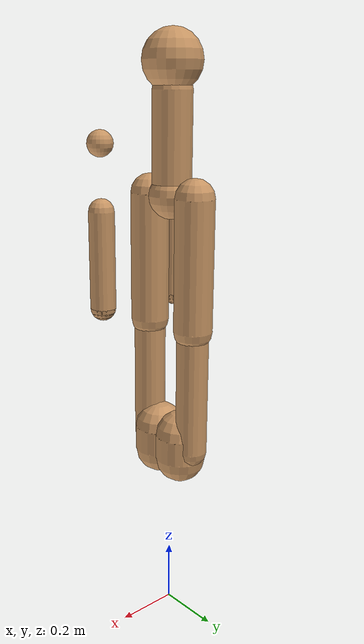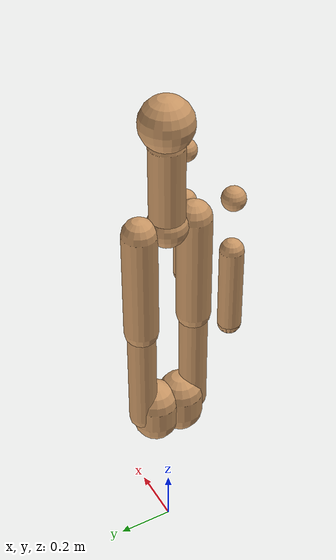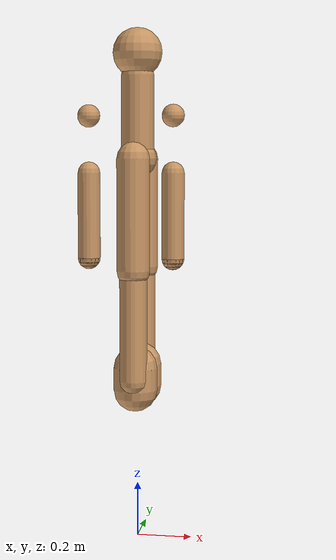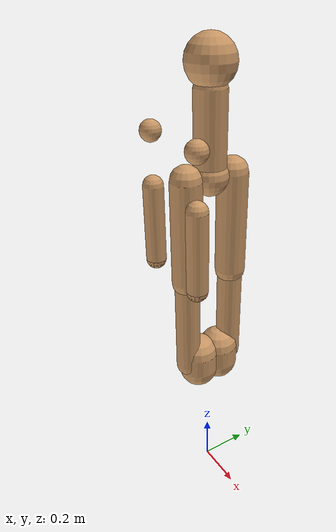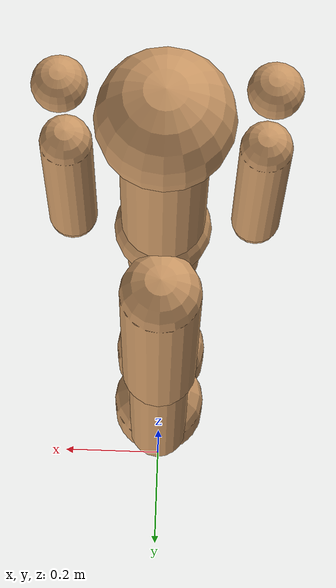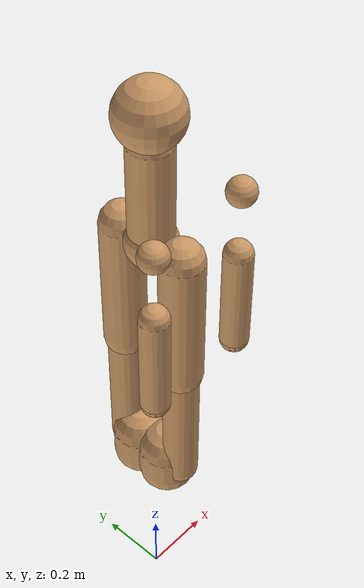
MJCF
<?xml version="1.0" ?>
<mujoco model="humanoid">
  <compiler angle="degree" inertiafromgeom="true"/>
  <default>
    <joint armature="1" damping="1" limited="true"/>
    <geom conaffinity="1" condim="1" contype="1" density="5" friction="1 0.5 0.5" margin="0.01" rgba="0.8 0.6 0.4 1"/>
  </default>

  <asset>
    <texture builtin="gradient" height="100" rgb1="1 1 1" rgb2="0 0 0" type="2d" width="100"/>
    <material name="geom" reflectance="0.1" specular="0.5" texture="texture"/>
  </asset>

  <worldbody>
    <body name="torso" pos="0 0 1.4">
      <camera name="track" mode="trackcom" pos="0 -4 1.5" xyaxes="1 0 0 0 0.5 1"/>
      <joint axis="1 0 0" name="abdomen_x" pos="0 0 0" range="-45 45" type="hinge"/>
      <joint axis="0 1 0" name="abdomen_y" pos="0 0 0" range="-45 45" type="hinge"/>
      <joint axis="0 0 1" name="abdomen_z" pos="0 0 0" range="-45 45" type="hinge"/>
      <geom name="torso_geom" pos="0 0 0" size="0.07" type="sphere"/>
      <geom name="upper_torso_geom" pos="0 0 0.15" size="0.06 0.15" type="capsule"/>

      <body name="right_thigh" pos="0 -0.1 0">
        <joint axis="0 1 0" name="right_hip_y" pos="0 0 0" range="-120 120" type="hinge"/>
        <joint axis="1 0 0" name="right_hip_x" pos="0 0 0" range="-30 30" type="hinge"/>
        <joint axis="0 0 1" name="right_hip_z" pos="0 0 0" range="-30 30" type="hinge"/>
        <geom name="right_thigh_geom" pos="0 0 -0.2" size="0.06 0.2" type="capsule"/>

        <body name="right_shin" pos="0 0 -0.4">
          <joint axis="0 1 0" name="right_knee" pos="0 0 0" range="-120 0" type="hinge"/>
          <geom name="right_shin_geom" pos="0 0 -0.2" size="0.05 0.2" type="capsule"/>

          <body name="right_foot" pos="0 0 -0.4">
            <joint axis="0 1 0" name="right_ankle" pos="0 0 0" range="-45 45" type="hinge"/>
            <geom name="right_foot_geom" pos="0 0.05 0" size="0.08 0.04" type="capsule"/>
          </body>
        </body>
      </body>

      <body name="left_thigh" pos="0 0.1 0">
        <joint axis="0 1 0" name="left_hip_y" pos="0 0 0" range="-120 120" type="hinge"/>
        <joint axis="1 0 0" name="left_hip_x" pos="0 0 0" range="-30 30" type="hinge"/>
        <joint axis="0 0 1" name="left_hip_z" pos="0 0 0" range="-30 30" type="hinge"/>
        <geom name="left_thigh_geom" pos="0 0 -0.2" size="0.06 0.2" type="capsule"/>

        <body name="left_shin" pos="0 0 -0.4">
          <joint axis="0 1 0" name="left_knee" pos="0 0 0" range="-120 0" type="hinge"/>
          <geom name="left_shin_geom" pos="0 0 -0.2" size="0.05 0.2" type="capsule"/>

          <body name="left_foot" pos="0 0 -0.4">
            <joint axis="0 1 0" name="left_ankle" pos="0 0 0" range="-45 45" type="hinge"/>
            <geom name="left_foot_geom" pos="0 -0.05 0" size="0.08 0.04" type="capsule"/>
          </body>
        </body>
      </body>

      <body name="right_shoulder" pos="0.15 -0.15 0.15">
        <joint axis="0 1 0" name="right_shoulder_y" pos="0 0 0" range="-120 120" type="hinge"/>
        <joint axis="1 0 0" name="right_shoulder_x" pos="0 0 0" range="-120 120" type="hinge"/>
        <geom name="right_shoulder_geom" pos="0 0 0" size="0.04" type="sphere"/>

        <body name="right_arm" pos="0 0 -0.2">
          <joint axis="0 1 0" name="right_elbow" pos="0 0 0" range="-120 0" type="hinge"/>
          <geom name="right_arm_geom" pos="0 0 -0.15" size="0.04 0.15" type="capsule"/>

          <body name="right_hand" pos="0 0 -0.3">
            <geom name="right_hand_geom" pos="0 0 0" size="0.04" type="sphere"/>
          </body>
        </body>
      </body>

      <body name="left_shoulder" pos="-0.15 -0.15 0.15">
        <joint axis="0 1 0" name="left_shoulder_y" pos="0 0 0" range="-120 120" type="hinge"/>
        <joint axis="1 0 0" name="left_shoulder_x" pos="0 0 0" range="-120 120" type="hinge"/>
        <geom name="left_shoulder_geom" pos="0 0 0" size="0.04" type="sphere"/>

        <body name="left_arm" pos="0 0 -0.2">
          <joint axis="0 1 0" name="left_elbow" pos="0 0 0" range="-120 0" type="hinge"/>
          <geom name="left_arm_geom" pos="0 0 -0.15" size="0.04 0.15" type="capsule"/>

          <body name="left_hand" pos="0 0 -0.3">
            <geom name="left_hand_geom" pos="0 0 0" size="0.04" type="sphere"/>
          </body>
        </body>
      </body>

      <body name="head" pos="0 0 0.3">
        <joint axis="0 1 0" name="neck" pos="0 0 0" range="-45 45" type="hinge"/>
        <geom name="head_geom" pos="0 0 0.08" size="0.09" type="sphere"/>
        <geom name="neck_geom" pos="0 0 0" size="0.04 0.08" type="capsule"/>
      </body>
    </body>
  </worldbody>
</mujoco>
